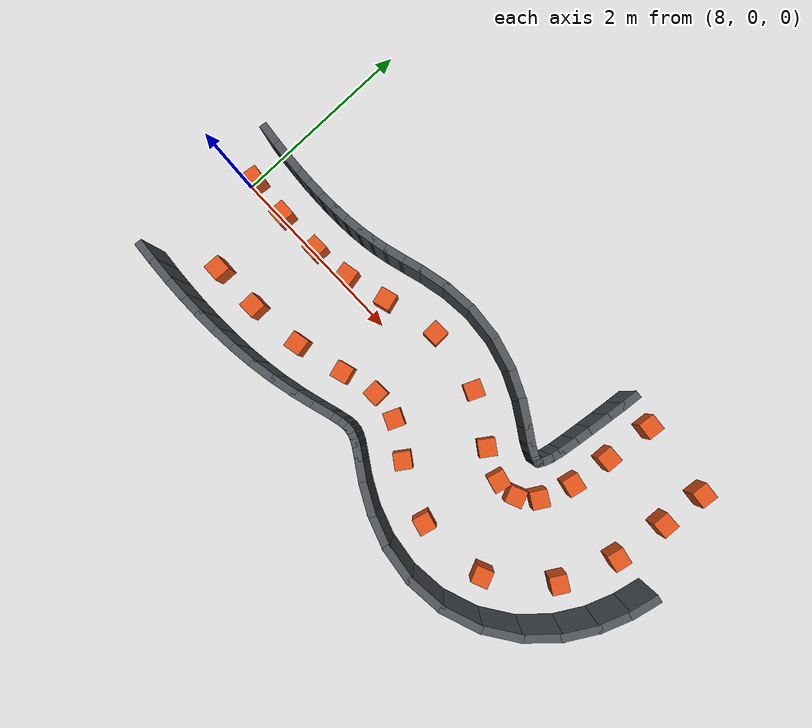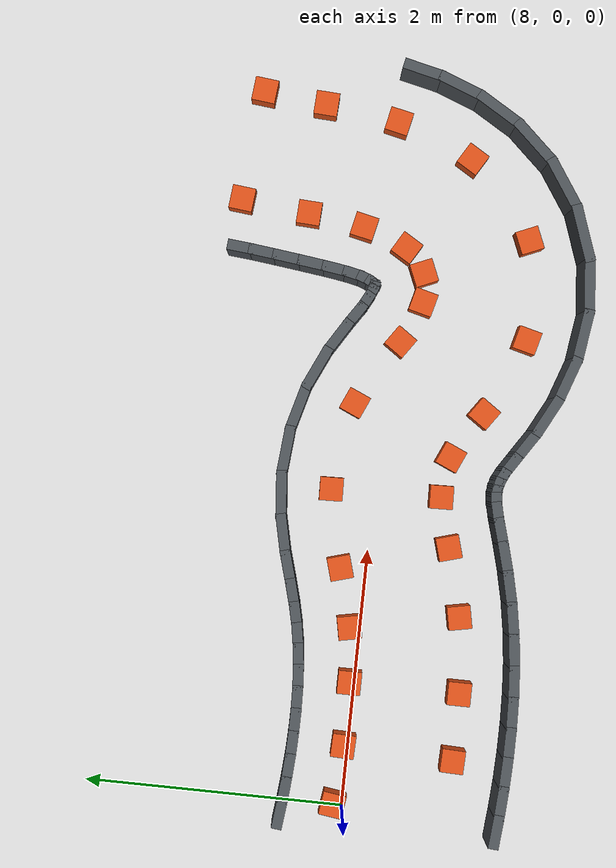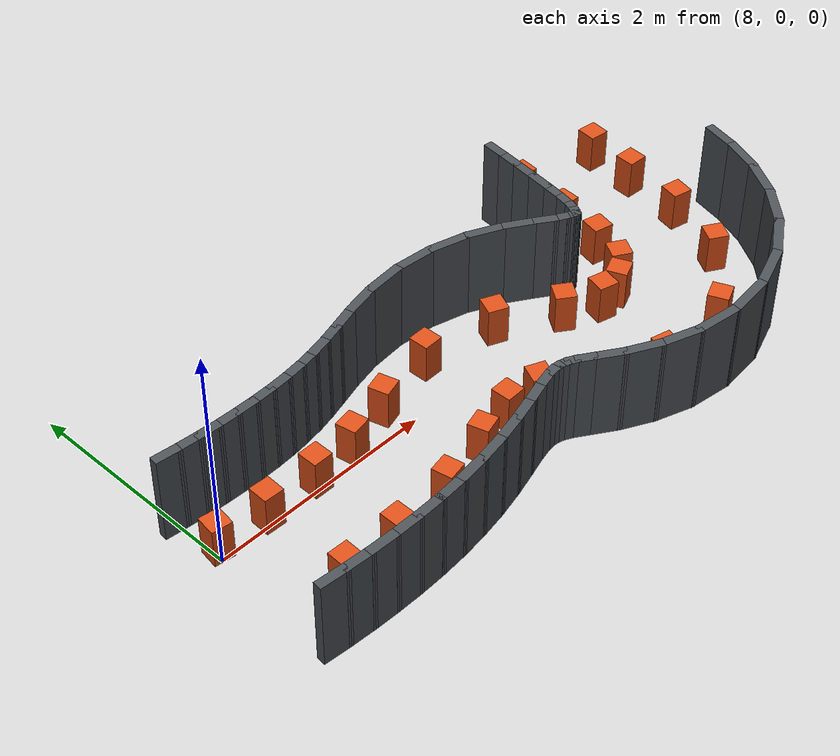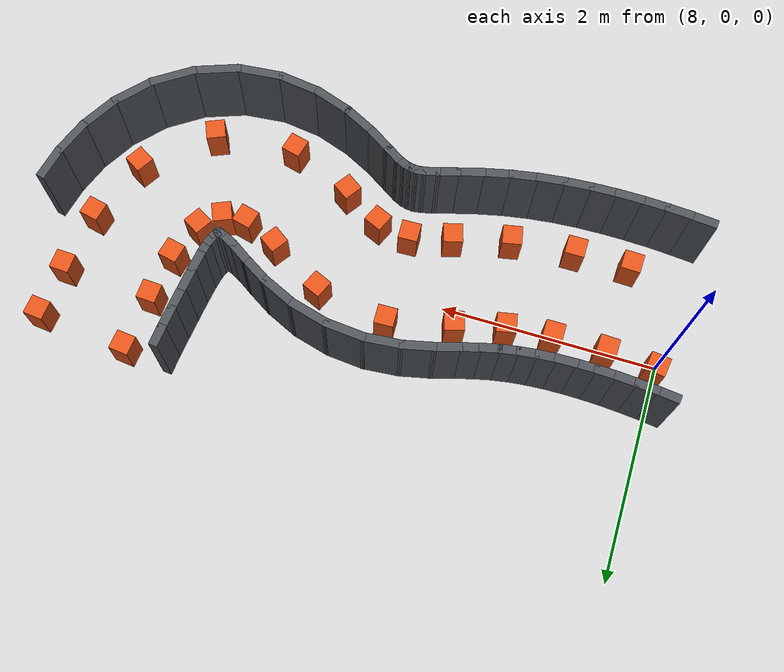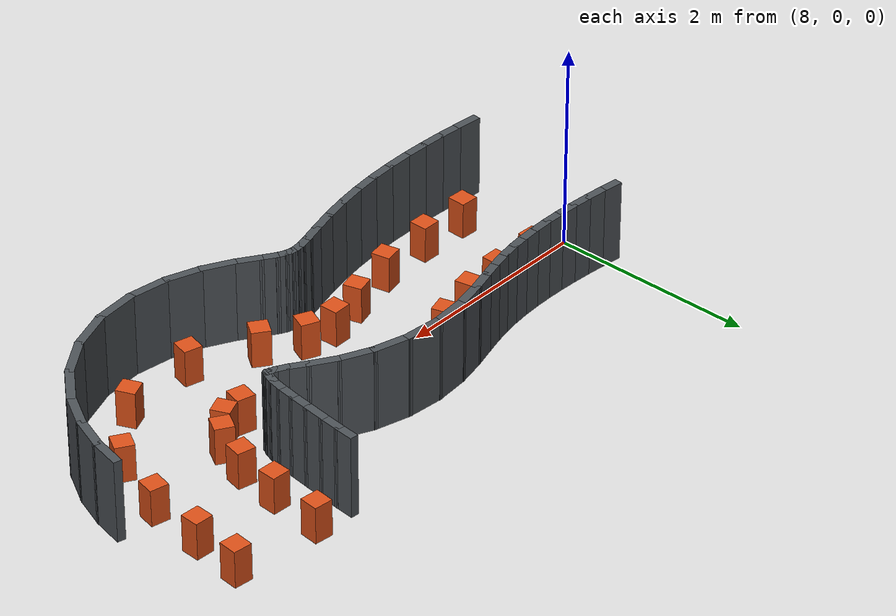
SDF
<sdf version="1.10">
 <world name="kookmin_xycar_track">
  <model name="slam_map">
   <static>true</static>
   <link name="route_wall_0131">
    <pose>7.966648 0.474018 0.400000 0 0 -0.115476760</pose>
    <collision name="collision">
     <geometry><box><size>0.223891 0.080000 0.800000</size></box></geometry>
    </collision>
    <visual name="visual">
     <geometry><box><size>0.223891 0.080000 0.800000</size></box></geometry>
     <material>
      <ambient>0.3000 0.3200 0.3400 1.0000</ambient>
      <diffuse>0.3000 0.3200 0.3400 1.0000</diffuse>
     </material>
    </visual>
   </link>
   <link name="route_wall_0132">
    <pose>8.147479 0.455454 0.400000 0 0 -0.088816953</pose>
    <collision name="collision">
     <geometry><box><size>0.219703 0.080000 0.800000</size></box></geometry>
    </collision>
    <visual name="visual">
     <geometry><box><size>0.219703 0.080000 0.800000</size></box></geometry>
     <material>
      <ambient>0.3000 0.3200 0.3400 1.0000</ambient>
      <diffuse>0.3000 0.3200 0.3400 1.0000</diffuse>
     </material>
    </visual>
   </link>
   <link name="route_wall_0133">
    <pose>8.325594 0.441581 0.400000 0 0 -0.066514917</pose>
    <collision name="collision">
     <geometry><box><size>0.217628 0.080000 0.800000</size></box></geometry>
    </collision>
    <visual name="visual">
     <geometry><box><size>0.217628 0.080000 0.800000</size></box></geometry>
     <material>
      <ambient>0.3000 0.3200 0.3400 1.0000</ambient>
      <diffuse>0.3000 0.3200 0.3400 1.0000</diffuse>
     </material>
    </visual>
   </link>
   <link name="route_wall_0134">
    <pose>8.501667 0.432632 0.400000 0 0 -0.034815207</pose>
    <collision name="collision">
     <geometry><box><size>0.215016 0.080000 0.800000</size></box></geometry>
    </collision>
    <visual name="visual">
     <geometry><box><size>0.215016 0.080000 0.800000</size></box></geometry>
     <material>
      <ambient>0.3000 0.3200 0.3400 1.0000</ambient>
      <diffuse>0.3000 0.3200 0.3400 1.0000</diffuse>
     </material>
    </visual>
   </link>
   <link name="route_wall_0135">
    <pose>8.675839 0.429061 0.400000 0 0 -0.006060002</pose>
    <collision name="collision">
     <geometry><box><size>0.213438 0.080000 0.800000</size></box></geometry>
    </collision>
    <visual name="visual">
     <geometry><box><size>0.213438 0.080000 0.800000</size></box></geometry>
     <material>
      <ambient>0.3000 0.3200 0.3400 1.0000</ambient>
      <diffuse>0.3000 0.3200 0.3400 1.0000</diffuse>
     </material>
    </visual>
   </link>
   <link name="route_wall_0136">
    <pose>8.847007 0.431000 0.400000 0 0 0.029178866</pose>
    <collision name="collision">
     <geometry><box><size>0.208973 0.080000 0.800000</size></box></geometry>
    </collision>
    <visual name="visual">
     <geometry><box><size>0.208973 0.080000 0.800000</size></box></geometry>
     <material>
      <ambient>0.3000 0.3200 0.3400 1.0000</ambient>
      <diffuse>0.3000 0.3200 0.3400 1.0000</diffuse>
     </material>
    </visual>
   </link>
   <link name="route_wall_0137">
    <pose>9.012983 0.439090 0.400000 0 0 0.068886231</pose>
    <collision name="collision">
     <geometry><box><size>0.203439 0.080000 0.800000</size></box></geometry>
    </collision>
    <visual name="visual">
     <geometry><box><size>0.203439 0.080000 0.800000</size></box></geometry>
     <material>
      <ambient>0.3000 0.3200 0.3400 1.0000</ambient>
      <diffuse>0.3000 0.3200 0.3400 1.0000</diffuse>
     </material>
    </visual>
   </link>
   <link name="route_wall_0138">
    <pose>9.173422 0.454073 0.400000 0 0 0.118038297</pose>
    <collision name="collision">
     <geometry><box><size>0.198934 0.080000 0.800000</size></box></geometry>
    </collision>
    <visual name="visual">
     <geometry><box><size>0.198934 0.080000 0.800000</size></box></geometry>
     <material>
      <ambient>0.3000 0.3200 0.3400 1.0000</ambient>
      <diffuse>0.3000 0.3200 0.3400 1.0000</diffuse>
     </material>
    </visual>
   </link>
   <link name="route_wall_0139">
    <pose>9.329199 0.476532 0.400000 0 0 0.168815756</pose>
    <collision name="collision">
     <geometry><box><size>0.195942 0.080000 0.800000</size></box></geometry>
    </collision>
    <visual name="visual">
     <geometry><box><size>0.195942 0.080000 0.800000</size></box></geometry>
     <material>
      <ambient>0.3000 0.3200 0.3400 1.0000</ambient>
      <diffuse>0.3000 0.3200 0.3400 1.0000</diffuse>
     </material>
    </visual>
   </link>
   <link name="route_wall_0140">
    <pose>9.483559 0.507461 0.400000 0 0 0.226128480</pose>
    <collision name="collision">
     <geometry><box><size>0.199043 0.080000 0.800000</size></box></geometry>
    </collision>
    <visual name="visual">
     <geometry><box><size>0.199043 0.080000 0.800000</size></box></geometry>
     <material>
      <ambient>0.3000 0.3200 0.3400 1.0000</ambient>
      <diffuse>0.3000 0.3200 0.3400 1.0000</diffuse>
     </material>
    </visual>
   </link>
   <link name="route_wall_0141">
    <pose>9.645888 0.548739 0.400000 0 0 0.269673224</pose>
    <collision name="collision">
     <geometry><box><size>0.216026 0.080000 0.800000</size></box></geometry>
    </collision>
    <visual name="visual">
     <geometry><box><size>0.216026 0.080000 0.800000</size></box></geometry>
     <material>
      <ambient>0.3000 0.3200 0.3400 1.0000</ambient>
      <diffuse>0.3000 0.3200 0.3400 1.0000</diffuse>
     </material>
    </visual>
   </link>
   <link name="route_wall_0142">
    <pose>9.835093 0.602401 0.400000 0 0 0.281784148</pose>
    <collision name="collision">
     <geometry><box><size>0.257315 0.080000 0.800000</size></box></geometry>
    </collision>
    <visual name="visual">
     <geometry><box><size>0.257315 0.080000 0.800000</size></box></geometry>
     <material>
      <ambient>0.3000 0.3200 0.3400 1.0000</ambient>
      <diffuse>0.3000 0.3200 0.3400 1.0000</diffuse>
     </material>
    </visual>
   </link>
   <link name="route_wall_0143">
    <pose>10.075233 0.662973 0.400000 0 0 0.219982755</pose>
    <collision name="collision">
     <geometry><box><size>0.318241 0.080000 0.800000</size></box></geometry>
    </collision>
    <visual name="visual">
     <geometry><box><size>0.318241 0.080000 0.800000</size></box></geometry>
     <material>
      <ambient>0.3000 0.3200 0.3400 1.0000</ambient>
      <diffuse>0.3000 0.3200 0.3400 1.0000</diffuse>
     </material>
    </visual>
   </link>
   <link name="route_wall_0144">
    <pose>10.374352 0.707405 0.400000 0 0 0.085946615</pose>
    <collision name="collision">
     <geometry><box><size>0.367912 0.080000 0.800000</size></box></geometry>
    </collision>
    <visual name="visual">
     <geometry><box><size>0.367912 0.080000 0.800000</size></box></geometry>
     <material>
      <ambient>0.3000 0.3200 0.3400 1.0000</ambient>
      <diffuse>0.3000 0.3200 0.3400 1.0000</diffuse>
     </material>
    </visual>
   </link>
   <link name="route_wall_0145">
    <pose>10.709081 0.706148 0.400000 0 0 -0.089224933</pose>
    <collision name="collision">
     <geometry><box><size>0.384126 0.080000 0.800000</size></box></geometry>
    </collision>
    <visual name="visual">
     <geometry><box><size>0.384126 0.080000 0.800000</size></box></geometry>
     <material>
      <ambient>0.3000 0.3200 0.3400 1.0000</ambient>
      <diffuse>0.3000 0.3200 0.3400 1.0000</diffuse>
     </material>
    </visual>
   </link>
   <link name="route_wall_0146">
    <pose>11.044491 0.646432 0.400000 0 0 -0.264249761</pose>
    <collision name="collision">
     <geometry><box><size>0.379859 0.080000 0.800000</size></box></geometry>
    </collision>
    <visual name="visual">
     <geometry><box><size>0.379859 0.080000 0.800000</size></box></geometry>
     <material>
      <ambient>0.3000 0.3200 0.3400 1.0000</ambient>
      <diffuse>0.3000 0.3200 0.3400 1.0000</diffuse>
     </material>
    </visual>
   </link>
   <link name="route_wall_0147">
    <pose>11.354007 0.535261 0.400000 0 0 -0.430377103</pose>
    <collision name="collision">
     <geometry><box><size>0.360164 0.080000 0.800000</size></box></geometry>
    </collision>
    <visual name="visual">
     <geometry><box><size>0.360164 0.080000 0.800000</size></box></geometry>
     <material>
      <ambient>0.3000 0.3200 0.3400 1.0000</ambient>
      <diffuse>0.3000 0.3200 0.3400 1.0000</diffuse>
     </material>
    </visual>
   </link>
   <link name="route_wall_0148">
    <pose>11.609471 0.400313 0.400000 0 0 -0.554811284</pose>
    <collision name="collision">
     <geometry><box><size>0.298777 0.080000 0.800000</size></box></geometry>
    </collision>
    <visual name="visual">
     <geometry><box><size>0.298777 0.080000 0.800000</size></box></geometry>
     <material>
      <ambient>0.3000 0.3200 0.3400 1.0000</ambient>
      <diffuse>0.3000 0.3200 0.3400 1.0000</diffuse>
     </material>
    </visual>
   </link>
   <link name="route_wall_0149">
    <pose>11.789101 0.285999 0.400000 0 0 -0.585222081</pose>
    <collision name="collision">
     <geometry><box><size>0.207108 0.080000 0.800000</size></box></geometry>
    </collision>
    <visual name="visual">
     <geometry><box><size>0.207108 0.080000 0.800000</size></box></geometry>
     <material>
      <ambient>0.3000 0.3200 0.3400 1.0000</ambient>
      <diffuse>0.3000 0.3200 0.3400 1.0000</diffuse>
     </material>
    </visual>
   </link>
   <link name="route_wall_0150">
    <pose>11.902926 0.216132 0.400000 0 0 -0.492660902</pose>
    <collision name="collision">
     <geometry><box><size>0.140275 0.080000 0.800000</size></box></geometry>
    </collision>
    <visual name="visual">
     <geometry><box><size>0.140275 0.080000 0.800000</size></box></geometry>
     <material>
      <ambient>0.3000 0.3200 0.3400 1.0000</ambient>
      <diffuse>0.3000 0.3200 0.3400 1.0000</diffuse>
     </material>
    </visual>
   </link>
   <link name="route_wall_0151">
    <pose>11.975694 0.181530 0.400000 0 0 -0.363830970</pose>
    <collision name="collision">
     <geometry><box><size>0.101193 0.080000 0.800000</size></box></geometry>
    </collision>
    <visual name="visual">
     <geometry><box><size>0.101193 0.080000 0.800000</size></box></geometry>
     <material>
      <ambient>0.3000 0.3200 0.3400 1.0000</ambient>
      <diffuse>0.3000 0.3200 0.3400 1.0000</diffuse>
     </material>
    </visual>
   </link>
   <link name="route_wall_0152">
    <pose>12.017201 0.168010 0.400000 0 0 -0.201098712</pose>
    <collision name="collision">
     <geometry><box><size>0.066357 0.080000 0.800000</size></box></geometry>
    </collision>
    <visual name="visual">
     <geometry><box><size>0.066357 0.080000 0.800000</size></box></geometry>
     <material>
      <ambient>0.3000 0.3200 0.3400 1.0000</ambient>
      <diffuse>0.3000 0.3200 0.3400 1.0000</diffuse>
     </material>
    </visual>
   </link>
   <link name="route_wall_0153">
    <pose>12.030471 0.164738 0.400000 0 0 -1.061222400</pose>
    <collision name="collision">
     <geometry><box><size>0.041464 0.080000 0.800000</size></box></geometry>
    </collision>
    <visual name="visual">
     <geometry><box><size>0.041464 0.080000 0.800000</size></box></geometry>
     <material>
      <ambient>0.3000 0.3200 0.3400 1.0000</ambient>
      <diffuse>0.3000 0.3200 0.3400 1.0000</diffuse>
     </material>
    </visual>
   </link>
   <link name="route_wall_0154">
    <pose>12.027094 0.162926 0.400000 0 0 -2.837242299</pose>
    <collision name="collision">
     <geometry><box><size>0.047828 0.080000 0.800000</size></box></geometry>
    </collision>
    <visual name="visual">
     <geometry><box><size>0.047828 0.080000 0.800000</size></box></geometry>
     <material>
      <ambient>0.3000 0.3200 0.3400 1.0000</ambient>
      <diffuse>0.3000 0.3200 0.3400 1.0000</diffuse>
     </material>
    </visual>
   </link>
   <link name="route_wall_0155">
    <pose>12.023251 0.162083 0.400000 0 0 1.888973631</pose>
    <collision name="collision">
     <geometry><box><size>0.040693 0.080000 0.800000</size></box></geometry>
    </collision>
    <visual name="visual">
     <geometry><box><size>0.040693 0.080000 0.800000</size></box></geometry>
     <material>
      <ambient>0.3000 0.3200 0.3400 1.0000</ambient>
      <diffuse>0.3000 0.3200 0.3400 1.0000</diffuse>
     </material>
    </visual>
   </link>
   <link name="route_wall_0156">
    <pose>12.028943 0.169905 0.400000 0 0 0.912114388</pose>
    <collision name="collision">
     <geometry><box><size>0.058951 0.080000 0.800000</size></box></geometry>
    </collision>
    <visual name="visual">
     <geometry><box><size>0.058951 0.080000 0.800000</size></box></geometry>
     <material>
      <ambient>0.3000 0.3200 0.3400 1.0000</ambient>
      <diffuse>0.3000 0.3200 0.3400 1.0000</diffuse>
     </material>
    </visual>
   </link>
   <link name="route_wall_0157">
    <pose>12.045730 0.197348 0.400000 0 0 1.067370011</pose>
    <collision name="collision">
     <geometry><box><size>0.085550 0.080000 0.800000</size></box></geometry>
    </collision>
    <visual name="visual">
     <geometry><box><size>0.085550 0.080000 0.800000</size></box></geometry>
     <material>
      <ambient>0.3000 0.3200 0.3400 1.0000</ambient>
      <diffuse>0.3000 0.3200 0.3400 1.0000</diffuse>
     </material>
    </visual>
   </link>
   <link name="route_wall_0158">
    <pose>12.068864 0.251259 0.400000 0 0 1.227312930</pose>
    <collision name="collision">
     <geometry><box><size>0.112137 0.080000 0.800000</size></box></geometry>
    </collision>
    <visual name="visual">
     <geometry><box><size>0.112137 0.080000 0.800000</size></box></geometry>
     <material>
      <ambient>0.3000 0.3200 0.3400 1.0000</ambient>
      <diffuse>0.3000 0.3200 0.3400 1.0000</diffuse>
     </material>
    </visual>
   </link>
   <link name="route_wall_0159">
    <pose>12.092694 0.341290 0.400000 0 0 1.365360271</pose>
    <collision name="collision">
     <geometry><box><size>0.154547 0.080000 0.800000</size></box></geometry>
    </collision>
    <visual name="visual">
     <geometry><box><size>0.154547 0.080000 0.800000</size></box></geometry>
     <material>
      <ambient>0.3000 0.3200 0.3400 1.0000</ambient>
      <diffuse>0.3000 0.3200 0.3400 1.0000</diffuse>
     </material>
    </visual>
   </link>
   <link name="route_wall_0160">
    <pose>12.116304 0.478053 0.400000 0 0 1.424060345</pose>
    <collision name="collision">
     <geometry><box><size>0.203143 0.080000 0.800000</size></box></geometry>
    </collision>
    <visual name="visual">
     <geometry><box><size>0.203143 0.080000 0.800000</size></box></geometry>
     <material>
      <ambient>0.3000 0.3200 0.3400 1.0000</ambient>
      <diffuse>0.3000 0.3200 0.3400 1.0000</diffuse>
     </material>
    </visual>
   </link>
   <link name="route_wall_0161">
    <pose>12.140359 0.652411 0.400000 0 0 1.442022619</pose>
    <collision name="collision">
     <geometry><box><size>0.228890 0.080000 0.800000</size></box></geometry>
    </collision>
    <visual name="visual">
     <geometry><box><size>0.228890 0.080000 0.800000</size></box></geometry>
     <material>
      <ambient>0.3000 0.3200 0.3400 1.0000</ambient>
      <diffuse>0.3000 0.3200 0.3400 1.0000</diffuse>
     </material>
    </visual>
   </link>
   <link name="route_wall_0162">
    <pose>12.164412 0.842508 0.400000 0 0 1.447760704</pose>
    <collision name="collision">
     <geometry><box><size>0.234336 0.080000 0.800000</size></box></geometry>
    </collision>
    <visual name="visual">
     <geometry><box><size>0.234336 0.080000 0.800000</size></box></geometry>
     <material>
      <ambient>0.3000 0.3200 0.3400 1.0000</ambient>
      <diffuse>0.3000 0.3200 0.3400 1.0000</diffuse>
     </material>
    </visual>
   </link>
   <link name="route_wall_0163">
    <pose>12.187168 1.031731 0.400000 0 0 1.454597416</pose>
    <collision name="collision">
     <geometry><box><size>0.226840 0.080000 0.800000</size></box></geometry>
    </collision>
    <visual name="visual">
     <geometry><box><size>0.226840 0.080000 0.800000</size></box></geometry>
     <material>
      <ambient>0.3000 0.3200 0.3400 1.0000</ambient>
      <diffuse>0.3000 0.3200 0.3400 1.0000</diffuse>
     </material>
    </visual>
   </link>
   <link name="route_wall_0164">
    <pose>12.205641 1.205674 0.400000 0 0 1.476904332</pose>
    <collision name="collision">
     <geometry><box><size>0.203023 0.080000 0.800000</size></box></geometry>
    </collision>
    <visual name="visual">
     <geometry><box><size>0.203023 0.080000 0.800000</size></box></geometry>
     <material>
      <ambient>0.3000 0.3200 0.3400 1.0000</ambient>
      <diffuse>0.3000 0.3200 0.3400 1.0000</diffuse>
     </material>
    </visual>
   </link>
   <link name="route_wall_0346">
    <pose>8.001109 -1.169846 0.400000 0 0 -0.088998348</pose>
    <collision name="collision">
     <geometry><box><size>0.259632 0.080000 0.800000</size></box></geometry>
    </collision>
    <visual name="visual">
     <geometry><box><size>0.259632 0.080000 0.800000</size></box></geometry>
     <material>
      <ambient>0.3000 0.3200 0.3400 1.0000</ambient>
      <diffuse>0.3000 0.3200 0.3400 1.0000</diffuse>
     </material>
    </visual>
   </link>
   <link name="route_wall_0347">
    <pose>8.221103 -1.186921 0.400000 0 0 -0.066030008</pose>
    <collision name="collision">
     <geometry><box><size>0.261708 0.080000 0.800000</size></box></geometry>
    </collision>
    <visual name="visual">
     <geometry><box><size>0.261708 0.080000 0.800000</size></box></geometry>
     <material>
      <ambient>0.3000 0.3200 0.3400 1.0000</ambient>
      <diffuse>0.3000 0.3200 0.3400 1.0000</diffuse>
     </material>
    </visual>
   </link>
   <link name="route_wall_0348">
    <pose>8.443805 -1.198156 0.400000 0 0 -0.034958256</pose>
    <collision name="collision">
     <geometry><box><size>0.264315 0.080000 0.800000</size></box></geometry>
    </collision>
    <visual name="visual">
     <geometry><box><size>0.264315 0.080000 0.800000</size></box></geometry>
     <material>
      <ambient>0.3000 0.3200 0.3400 1.0000</ambient>
      <diffuse>0.3000 0.3200 0.3400 1.0000</diffuse>
     </material>
    </visual>
   </link>
   <link name="route_wall_0349">
    <pose>8.668840 -1.202714 0.400000 0 0 -0.005648764</pose>
    <collision name="collision">
     <geometry><box><size>0.265895 0.080000 0.800000</size></box></geometry>
    </collision>
    <visual name="visual">
     <geometry><box><size>0.265895 0.080000 0.800000</size></box></geometry>
     <material>
      <ambient>0.3000 0.3200 0.3400 1.0000</ambient>
      <diffuse>0.3000 0.3200 0.3400 1.0000</diffuse>
     </material>
    </visual>
   </link>
   <link name="route_wall_0350">
    <pose>8.896903 -1.199949 0.400000 0 0 0.029553245</pose>
    <collision name="collision">
     <geometry><box><size>0.270336 0.080000 0.800000</size></box></geometry>
    </collision>
    <visual name="visual">
     <geometry><box><size>0.270336 0.080000 0.800000</size></box></geometry>
     <material>
      <ambient>0.3000 0.3200 0.3400 1.0000</ambient>
      <diffuse>0.3000 0.3200 0.3400 1.0000</diffuse>
     </material>
    </visual>
   </link>
   <link name="route_wall_0351">
    <pose>9.129674 -1.188330 0.400000 0 0 0.069713729</pose>
    <collision name="collision">
     <geometry><box><size>0.275879 0.080000 0.800000</size></box></geometry>
    </collision>
    <visual name="visual">
     <geometry><box><size>0.275879 0.080000 0.800000</size></box></geometry>
     <material>
      <ambient>0.3000 0.3200 0.3400 1.0000</ambient>
      <diffuse>0.3000 0.3200 0.3400 1.0000</diffuse>
     </material>
    </visual>
   </link>
   <link name="route_wall_0352">
    <pose>9.366669 -1.165934 0.400000 0 0 0.118271548</pose>
    <collision name="collision">
     <geometry><box><size>0.280364 0.080000 0.800000</size></box></geometry>
    </collision>
    <visual name="visual">
     <geometry><box><size>0.280364 0.080000 0.800000</size></box></geometry>
     <material>
      <ambient>0.3000 0.3200 0.3400 1.0000</ambient>
      <diffuse>0.3000 0.3200 0.3400 1.0000</diffuse>
     </material>
    </visual>
   </link>
   <link name="route_wall_0353">
    <pose>9.605948 -1.131238 0.400000 0 0 0.169406843</pose>
    <collision name="collision">
     <geometry><box><size>0.283355 0.080000 0.800000</size></box></geometry>
    </collision>
    <visual name="visual">
     <geometry><box><size>0.283355 0.080000 0.800000</size></box></geometry>
     <material>
      <ambient>0.3000 0.3200 0.3400 1.0000</ambient>
      <diffuse>0.3000 0.3200 0.3400 1.0000</diffuse>
     </material>
    </visual>
   </link>
   <link name="route_wall_0354">
    <pose>9.842987 -1.083949 0.400000 0 0 0.224776285</pose>
    <collision name="collision">
     <geometry><box><size>0.280252 0.080000 0.800000</size></box></geometry>
    </collision>
    <visual name="visual">
     <geometry><box><size>0.280252 0.080000 0.800000</size></box></geometry>
     <material>
      <ambient>0.3000 0.3200 0.3400 1.0000</ambient>
      <diffuse>0.3000 0.3200 0.3400 1.0000</diffuse>
     </material>
    </visual>
   </link>
   <link name="route_wall_0355">
    <pose>10.067757 -1.027615 0.400000 0 0 0.267941832</pose>
    <collision name="collision">
     <geometry><box><size>0.263300 0.080000 0.800000</size></box></geometry>
    </collision>
    <visual name="visual">
     <geometry><box><size>0.263300 0.080000 0.800000</size></box></geometry>
     <material>
      <ambient>0.3000 0.3200 0.3400 1.0000</ambient>
      <diffuse>0.3000 0.3200 0.3400 1.0000</diffuse>
     </material>
    </visual>
   </link>
   <link name="route_wall_0356">
    <pose>10.262764 -0.972467 0.400000 0 0 0.285006543</pose>
    <collision name="collision">
     <geometry><box><size>0.222025 0.080000 0.800000</size></box></geometry>
    </collision>
    <visual name="visual">
     <geometry><box><size>0.222025 0.080000 0.800000</size></box></geometry>
     <material>
      <ambient>0.3000 0.3200 0.3400 1.0000</ambient>
      <diffuse>0.3000 0.3200 0.3400 1.0000</diffuse>
     </material>
    </visual>
   </link>
   <link name="route_wall_0357">
    <pose>10.408882 -0.932619 0.400000 0 0 0.237989549</pose>
    <collision name="collision">
     <geometry><box><size>0.160964 0.080000 0.800000</size></box></geometry>
    </collision>
    <visual name="visual">
     <geometry><box><size>0.160964 0.080000 0.800000</size></box></geometry>
     <material>
      <ambient>0.3000 0.3200 0.3400 1.0000</ambient>
      <diffuse>0.3000 0.3200 0.3400 1.0000</diffuse>
     </material>
    </visual>
   </link>
   <link name="route_wall_0358">
    <pose>10.502927 -0.914440 0.400000 0 0 0.110696316</pose>
    <collision name="collision">
     <geometry><box><size>0.110970 0.080000 0.800000</size></box></geometry>
    </collision>
    <visual name="visual">
     <geometry><box><size>0.110970 0.080000 0.800000</size></box></geometry>
     <material>
      <ambient>0.3000 0.3200 0.3400 1.0000</ambient>
      <diffuse>0.3000 0.3200 0.3400 1.0000</diffuse>
     </material>
    </visual>
   </link>
   <link name="route_wall_0359">
    <pose>10.565421 -0.913063 0.400000 0 0 -0.093110009</pose>
    <collision name="collision">
     <geometry><box><size>0.094689 0.080000 0.800000</size></box></geometry>
    </collision>
    <visual name="visual">
     <geometry><box><size>0.094689 0.080000 0.800000</size></box></geometry>
     <material>
      <ambient>0.3000 0.3200 0.3400 1.0000</ambient>
      <diffuse>0.3000 0.3200 0.3400 1.0000</diffuse>
     </material>
    </visual>
   </link>
   <link name="route_wall_0360">
    <pose>10.621069 -0.923411 0.400000 0 0 -0.268044329</pose>
    <collision name="collision">
     <geometry><box><size>0.098949 0.080000 0.800000</size></box></geometry>
    </collision>
    <visual name="visual">
     <geometry><box><size>0.098949 0.080000 0.800000</size></box></geometry>
     <material>
      <ambient>0.3000 0.3200 0.3400 1.0000</ambient>
      <diffuse>0.3000 0.3200 0.3400 1.0000</diffuse>
     </material>
    </visual>
   </link>
   <link name="route_wall_0361">
    <pose>10.684899 -0.948362 0.400000 0 0 -0.450929177</pose>
    <collision name="collision">
     <geometry><box><size>0.118681 0.080000 0.800000</size></box></geometry>
    </collision>
    <visual name="visual">
     <geometry><box><size>0.118681 0.080000 0.800000</size></box></geometry>
     <material>
      <ambient>0.3000 0.3200 0.3400 1.0000</ambient>
      <diffuse>0.3000 0.3200 0.3400 1.0000</diffuse>
     </material>
    </visual>
   </link>
   <link name="route_wall_0362">
    <pose>10.779365 -1.003556 0.400000 0 0 -0.572338039</pose>
    <collision name="collision">
     <geometry><box><size>0.180508 0.080000 0.800000</size></box></geometry>
    </collision>
    <visual name="visual">
     <geometry><box><size>0.180508 0.080000 0.800000</size></box></geometry>
     <material>
      <ambient>0.3000 0.3200 0.3400 1.0000</ambient>
      <diffuse>0.3000 0.3200 0.3400 1.0000</diffuse>
     </material>
    </visual>
   </link>
   <link name="route_wall_0363">
    <pose>10.935826 -1.104787 0.400000 0 0 -0.575430375</pose>
    <collision name="collision">
     <geometry><box><size>0.272200 0.080000 0.800000</size></box></geometry>
    </collision>
    <visual name="visual">
     <geometry><box><size>0.272200 0.080000 0.800000</size></box></geometry>
     <material>
      <ambient>0.3000 0.3200 0.3400 1.0000</ambient>
      <diffuse>0.3000 0.3200 0.3400 1.0000</diffuse>
     </material>
    </visual>
   </link>
   <link name="route_wall_0364">
    <pose>11.165920 -1.236588 0.400000 0 0 -0.477268231</pose>
    <collision name="collision">
     <geometry><box><size>0.338767 0.080000 0.800000</size></box></geometry>
    </collision>
    <visual name="visual">
     <geometry><box><size>0.338767 0.080000 0.800000</size></box></geometry>
     <material>
      <ambient>0.3000 0.3200 0.3400 1.0000</ambient>
      <diffuse>0.3000 0.3200 0.3400 1.0000</diffuse>
     </material>
    </visual>
   </link>
   <link name="route_wall_0365">
    <pose>11.458267 -1.360086 0.400000 0 0 -0.331073334</pose>
    <collision name="collision">
     <geometry><box><size>0.377649 0.080000 0.800000</size></box></geometry>
    </collision>
    <visual name="visual">
     <geometry><box><size>0.377649 0.080000 0.800000</size></box></geometry>
     <material>
      <ambient>0.3000 0.3200 0.3400 1.0000</ambient>
      <diffuse>0.3000 0.3200 0.3400 1.0000</diffuse>
     </material>
    </visual>
   </link>
   <link name="route_wall_0366">
    <pose>11.802272 -1.440503 0.400000 0 0 -0.137662886</pose>
    <collision name="collision">
     <geometry><box><size>0.412220 0.080000 0.800000</size></box></geometry>
    </collision>
    <visual name="visual">
     <geometry><box><size>0.412220 0.080000 0.800000</size></box></geometry>
     <material>
      <ambient>0.3000 0.3200 0.3400 1.0000</ambient>
      <diffuse>0.3000 0.3200 0.3400 1.0000</diffuse>
     </material>
    </visual>
   </link>
   <link name="route_wall_0367">
    <pose>12.184658 -1.447780 0.400000 0 0 0.091959901</pose>
    <collision name="collision">
     <geometry><box><size>0.437754 0.080000 0.800000</size></box></geometry>
    </collision>
    <visual name="visual">
     <geometry><box><size>0.437754 0.080000 0.800000</size></box></geometry>
     <material>
      <ambient>0.3000 0.3200 0.3400 1.0000</ambient>
      <diffuse>0.3000 0.3200 0.3400 1.0000</diffuse>
     </material>
    </visual>
   </link>
   <link name="route_wall_0368">
    <pose>12.573764 -1.360800 0.400000 0 0 0.345241234</pose>
    <collision name="collision">
     <geometry><box><size>0.446101 0.080000 0.800000</size></box></geometry>
    </collision>
    <visual name="visual">
     <geometry><box><size>0.446101 0.080000 0.800000</size></box></geometry>
     <material>
      <ambient>0.3000 0.3200 0.3400 1.0000</ambient>
      <diffuse>0.3000 0.3200 0.3400 1.0000</diffuse>
     </material>
    </visual>
   </link>
   <link name="route_wall_0369">
    <pose>12.929629 -1.180421 0.400000 0 0 0.595520645</pose>
    <collision name="collision">
     <geometry><box><size>0.438125 0.080000 0.800000</size></box></geometry>
    </collision>
    <visual name="visual">
     <geometry><box><size>0.438125 0.080000 0.800000</size></box></geometry>
     <material>
      <ambient>0.3000 0.3200 0.3400 1.0000</ambient>
      <diffuse>0.3000 0.3200 0.3400 1.0000</diffuse>
     </material>
    </visual>
   </link>
   <link name="route_wall_0370">
    <pose>13.222354 -0.928582 0.400000 0 0 0.831046848</pose>
    <collision name="collision">
     <geometry><box><size>0.419556 0.080000 0.800000</size></box></geometry>
    </collision>
    <visual name="visual">
     <geometry><box><size>0.419556 0.080000 0.800000</size></box></geometry>
     <material>
      <ambient>0.3000 0.3200 0.3400 1.0000</ambient>
      <diffuse>0.3000 0.3200 0.3400 1.0000</diffuse>
     </material>
    </visual>
   </link>
   <link name="route_wall_0371">
    <pose>13.440237 -0.636375 0.400000 0 0 1.036516024</pose>
    <collision name="collision">
     <geometry><box><size>0.393295 0.080000 0.800000</size></box></geometry>
    </collision>
    <visual name="visual">
     <geometry><box><size>0.393295 0.080000 0.800000</size></box></geometry>
     <material>
      <ambient>0.3000 0.3200 0.3400 1.0000</ambient>
      <diffuse>0.3000 0.3200 0.3400 1.0000</diffuse>
     </material>
    </visual>
   </link>
   <link name="route_wall_0372">
    <pose>13.587931 -0.331540 0.400000 0 0 1.209504689</pose>
    <collision name="collision">
     <geometry><box><size>0.366703 0.080000 0.800000</size></box></geometry>
    </collision>
    <visual name="visual">
     <geometry><box><size>0.366703 0.080000 0.800000</size></box></geometry>
     <material>
      <ambient>0.3000 0.3200 0.3400 1.0000</ambient>
      <diffuse>0.3000 0.3200 0.3400 1.0000</diffuse>
     </material>
    </visual>
   </link>
   <link name="route_wall_0373">
    <pose>13.677255 -0.039967 0.400000 0 0 1.347023876</pose>
    <collision name="collision">
     <geometry><box><size>0.324632 0.080000 0.800000</size></box></geometry>
    </collision>
    <visual name="visual">
     <geometry><box><size>0.324632 0.080000 0.800000</size></box></geometry>
     <material>
      <ambient>0.3000 0.3200 0.3400 1.0000</ambient>
      <diffuse>0.3000 0.3200 0.3400 1.0000</diffuse>
     </material>
    </visual>
   </link>
   <link name="cone_rule_left_04">
    <pose>8.030717 0.073629 0.180000 0 0 -0.142873870</pose>
    <collision name="collision">
     <geometry><box><size>0.180000 0.180000 0.360000</size></box></geometry>
    </collision>
    <visual name="visual">
     <geometry><box><size>0.180000 0.180000 0.360000</size></box></geometry>
     <material>
      <ambient>0.8627 0.3137 0.0941 1.0000</ambient>
      <diffuse>0.8627 0.3137 0.0941 1.0000</diffuse>
     </material>
    </visual>
   </link>
   <link name="cone_rule_left_05">
    <pose>8.489573 0.037775 0.180000 0 0 -0.036173842</pose>
    <collision name="collision">
     <geometry><box><size>0.180000 0.180000 0.360000</size></box></geometry>
    </collision>
    <visual name="visual">
     <geometry><box><size>0.180000 0.180000 0.360000</size></box></geometry>
     <material>
      <ambient>0.8627 0.3137 0.0941 1.0000</ambient>
      <diffuse>0.8627 0.3137 0.0941 1.0000</diffuse>
     </material>
    </visual>
   </link>
   <link name="cone_rule_right_05">
    <pose>8.458832 -0.811669 0.180000 0 0 -0.036173842</pose>
    <collision name="collision">
     <geometry><box><size>0.180000 0.180000 0.360000</size></box></geometry>
    </collision>
    <visual name="visual">
     <geometry><box><size>0.180000 0.180000 0.360000</size></box></geometry>
     <material>
      <ambient>0.8627 0.3137 0.0941 1.0000</ambient>
      <diffuse>0.8627 0.3137 0.0941 1.0000</diffuse>
     </material>
    </visual>
   </link>
   <link name="cone_rule_left_06">
    <pose>8.979695 0.041334 0.180000 0 0 0.000325170</pose>
    <collision name="collision">
     <geometry><box><size>0.180000 0.180000 0.360000</size></box></geometry>
    </collision>
    <visual name="visual">
     <geometry><box><size>0.180000 0.180000 0.360000</size></box></geometry>
     <material>
      <ambient>0.8627 0.3137 0.0941 1.0000</ambient>
      <diffuse>0.8627 0.3137 0.0941 1.0000</diffuse>
     </material>
    </visual>
   </link>
   <link name="cone_rule_right_06">
    <pose>8.979972 -0.808666 0.180000 0 0 0.000325170</pose>
    <collision name="collision">
     <geometry><box><size>0.180000 0.180000 0.360000</size></box></geometry>
    </collision>
    <visual name="visual">
     <geometry><box><size>0.180000 0.180000 0.360000</size></box></geometry>
     <material>
      <ambient>0.8627 0.3137 0.0941 1.0000</ambient>
      <diffuse>0.8627 0.3137 0.0941 1.0000</diffuse>
     </material>
    </visual>
   </link>
   <link name="cone_rule_left_07">
    <pose>9.400763 0.084558 0.180000 0 0 0.193824790</pose>
    <collision name="collision">
     <geometry><box><size>0.180000 0.180000 0.360000</size></box></geometry>
    </collision>
    <visual name="visual">
     <geometry><box><size>0.180000 0.180000 0.360000</size></box></geometry>
     <material>
      <ambient>0.8627 0.3137 0.0941 1.0000</ambient>
      <diffuse>0.8627 0.3137 0.0941 1.0000</diffuse>
     </material>
    </visual>
   </link>
   <link name="cone_rule_right_07">
    <pose>9.564484 -0.749526 0.180000 0 0 0.193824790</pose>
    <collision name="collision">
     <geometry><box><size>0.180000 0.180000 0.360000</size></box></geometry>
    </collision>
    <visual name="visual">
     <geometry><box><size>0.180000 0.180000 0.360000</size></box></geometry>
     <material>
      <ambient>0.8627 0.3137 0.0941 1.0000</ambient>
      <diffuse>0.8627 0.3137 0.0941 1.0000</diffuse>
     </material>
    </visual>
   </link>
   <link name="cone_rule_left_08">
    <pose>9.851735 0.201848 0.180000 0 0 0.282508139</pose>
    <collision name="collision">
     <geometry><box><size>0.180000 0.180000 0.360000</size></box></geometry>
    </collision>
    <visual name="visual">
     <geometry><box><size>0.180000 0.180000 0.360000</size></box></geometry>
     <material>
      <ambient>0.8627 0.3137 0.0941 1.0000</ambient>
      <diffuse>0.8627 0.3137 0.0941 1.0000</diffuse>
     </material>
    </visual>
   </link>
   <link name="cone_rule_right_08">
    <pose>10.088686 -0.614457 0.180000 0 0 0.282508139</pose>
    <collision name="collision">
     <geometry><box><size>0.180000 0.180000 0.360000</size></box></geometry>
    </collision>
    <visual name="visual">
     <geometry><box><size>0.180000 0.180000 0.360000</size></box></geometry>
     <material>
      <ambient>0.8627 0.3137 0.0941 1.0000</ambient>
      <diffuse>0.8627 0.3137 0.0941 1.0000</diffuse>
     </material>
    </visual>
   </link>
   <link name="cone_rule_left_09">
    <pose>10.449794 0.332275 0.180000 0 0 0.027365632</pose>
    <collision name="collision">
     <geometry><box><size>0.180000 0.180000 0.360000</size></box></geometry>
    </collision>
    <visual name="visual">
     <geometry><box><size>0.180000 0.180000 0.360000</size></box></geometry>
     <material>
      <ambient>0.8627 0.3137 0.0941 1.0000</ambient>
      <diffuse>0.8627 0.3137 0.0941 1.0000</diffuse>
     </material>
    </visual>
   </link>
   <link name="cone_rule_right_09">
    <pose>10.473052 -0.517406 0.180000 0 0 0.027365632</pose>
    <collision name="collision">
     <geometry><box><size>0.180000 0.180000 0.360000</size></box></geometry>
    </collision>
    <visual name="visual">
     <geometry><box><size>0.180000 0.180000 0.360000</size></box></geometry>
     <material>
      <ambient>0.8627 0.3137 0.0941 1.0000</ambient>
      <diffuse>0.8627 0.3137 0.0941 1.0000</diffuse>
     </material>
    </visual>
   </link>
   <link name="cone_rule_left_10">
    <pose>11.126654 0.218714 0.180000 0 0 -0.411932795</pose>
    <collision name="collision">
     <geometry><box><size>0.180000 0.180000 0.360000</size></box></geometry>
    </collision>
    <visual name="visual">
     <geometry><box><size>0.180000 0.180000 0.360000</size></box></geometry>
     <material>
      <ambient>0.8627 0.3137 0.0941 1.0000</ambient>
      <diffuse>0.8627 0.3137 0.0941 1.0000</diffuse>
     </material>
    </visual>
   </link>
   <link name="cone_rule_right_10">
    <pose>10.786330 -0.560183 0.180000 0 0 -0.411932795</pose>
    <collision name="collision">
     <geometry><box><size>0.180000 0.180000 0.360000</size></box></geometry>
    </collision>
    <visual name="visual">
     <geometry><box><size>0.180000 0.180000 0.360000</size></box></geometry>
     <material>
      <ambient>0.8627 0.3137 0.0941 1.0000</ambient>
      <diffuse>0.8627 0.3137 0.0941 1.0000</diffuse>
     </material>
    </visual>
   </link>
   <link name="cone_rule_left_11">
    <pose>11.630683 -0.081820 0.180000 0 0 -0.607694248</pose>
    <collision name="collision">
     <geometry><box><size>0.180000 0.180000 0.360000</size></box></geometry>
    </collision>
    <visual name="visual">
     <geometry><box><size>0.180000 0.180000 0.360000</size></box></geometry>
     <material>
      <ambient>0.8627 0.3137 0.0941 1.0000</ambient>
      <diffuse>0.8627 0.3137 0.0941 1.0000</diffuse>
     </material>
    </visual>
   </link>
   <link name="cone_rule_right_11">
    <pose>11.145354 -0.779642 0.180000 0 0 -0.607694248</pose>
    <collision name="collision">
     <geometry><box><size>0.180000 0.180000 0.360000</size></box></geometry>
    </collision>
    <visual name="visual">
     <geometry><box><size>0.180000 0.180000 0.360000</size></box></geometry>
     <material>
      <ambient>0.8627 0.3137 0.0941 1.0000</ambient>
      <diffuse>0.8627 0.3137 0.0941 1.0000</diffuse>
     </material>
    </visual>
   </link>
   <link name="cone_rule_left_12">
    <pose>11.951653 -0.225139 0.180000 0 0 -0.249824653</pose>
    <collision name="collision">
     <geometry><box><size>0.180000 0.180000 0.360000</size></box></geometry>
    </collision>
    <visual name="visual">
     <geometry><box><size>0.180000 0.180000 0.360000</size></box></geometry>
     <material>
      <ambient>0.8627 0.3137 0.0941 1.0000</ambient>
      <diffuse>0.8627 0.3137 0.0941 1.0000</diffuse>
     </material>
    </visual>
   </link>
   <link name="cone_rule_right_12">
    <pose>11.741504 -1.048751 0.180000 0 0 -0.249824653</pose>
    <collision name="collision">
     <geometry><box><size>0.180000 0.180000 0.360000</size></box></geometry>
    </collision>
    <visual name="visual">
     <geometry><box><size>0.180000 0.180000 0.360000</size></box></geometry>
     <material>
      <ambient>0.8627 0.3137 0.0941 1.0000</ambient>
      <diffuse>0.8627 0.3137 0.0941 1.0000</diffuse>
     </material>
    </visual>
   </link>
   <link name="cone_rule_left_13">
    <pose>12.176909 -0.206721 0.180000 0 0 0.401265364</pose>
    <collision name="collision">
     <geometry><box><size>0.180000 0.180000 0.360000</size></box></geometry>
    </collision>
    <visual name="visual">
     <geometry><box><size>0.180000 0.180000 0.360000</size></box></geometry>
     <material>
      <ambient>0.8627 0.3137 0.0941 1.0000</ambient>
      <diffuse>0.8627 0.3137 0.0941 1.0000</diffuse>
     </material>
    </visual>
   </link>
   <link name="cone_rule_right_13">
    <pose>12.508905 -0.989203 0.180000 0 0 0.401265364</pose>
    <collision name="collision">
     <geometry><box><size>0.180000 0.180000 0.360000</size></box></geometry>
    </collision>
    <visual name="visual">
     <geometry><box><size>0.180000 0.180000 0.360000</size></box></geometry>
     <material>
      <ambient>0.8627 0.3137 0.0941 1.0000</ambient>
      <diffuse>0.8627 0.3137 0.0941 1.0000</diffuse>
     </material>
    </visual>
   </link>
   <link name="cone_rule_left_14">
    <pose>12.355758 -0.055635 0.180000 0 0 1.033298864</pose>
    <collision name="collision">
     <geometry><box><size>0.180000 0.180000 0.360000</size></box></geometry>
    </collision>
    <visual name="visual">
     <geometry><box><size>0.180000 0.180000 0.360000</size></box></geometry>
     <material>
      <ambient>0.8627 0.3137 0.0941 1.0000</ambient>
      <diffuse>0.8627 0.3137 0.0941 1.0000</diffuse>
     </material>
    </visual>
   </link>
   <link name="cone_rule_right_14">
    <pose>13.085902 -0.490824 0.180000 0 0 1.033298864</pose>
    <collision name="collision">
     <geometry><box><size>0.180000 0.180000 0.360000</size></box></geometry>
    </collision>
    <visual name="visual">
     <geometry><box><size>0.180000 0.180000 0.360000</size></box></geometry>
     <material>
      <ambient>0.8627 0.3137 0.0941 1.0000</ambient>
      <diffuse>0.8627 0.3137 0.0941 1.0000</diffuse>
     </material>
    </visual>
   </link>
   <link name="cone_rule_left_15">
    <pose>12.486639 0.286667 0.180000 0 0 1.354144366</pose>
    <collision name="collision">
     <geometry><box><size>0.180000 0.180000 0.360000</size></box></geometry>
    </collision>
    <visual name="visual">
     <geometry><box><size>0.180000 0.180000 0.360000</size></box></geometry>
     <material>
      <ambient>0.8627 0.3137 0.0941 1.0000</ambient>
      <diffuse>0.8627 0.3137 0.0941 1.0000</diffuse>
     </material>
    </visual>
   </link>
   <link name="cone_rule_right_15">
    <pose>13.316769 0.103950 0.180000 0 0 1.354144366</pose>
    <collision name="collision">
     <geometry><box><size>0.180000 0.180000 0.360000</size></box></geometry>
    </collision>
    <visual name="visual">
     <geometry><box><size>0.180000 0.180000 0.360000</size></box></geometry>
     <material>
      <ambient>0.8627 0.3137 0.0941 1.0000</ambient>
      <diffuse>0.8627 0.3137 0.0941 1.0000</diffuse>
     </material>
    </visual>
   </link>
   <link name="cone_rule_left_16">
    <pose>12.546392 0.719609 0.180000 0 0 1.514130439</pose>
    <collision name="collision">
     <geometry><box><size>0.180000 0.180000 0.360000</size></box></geometry>
    </collision>
    <visual name="visual">
     <geometry><box><size>0.180000 0.180000 0.360000</size></box></geometry>
     <material>
      <ambient>0.8627 0.3137 0.0941 1.0000</ambient>
      <diffuse>0.8627 0.3137 0.0941 1.0000</diffuse>
     </material>
    </visual>
   </link>
   <link name="cone_rule_right_16">
    <pose>13.395028 0.671469 0.180000 0 0 1.514130439</pose>
    <collision name="collision">
     <geometry><box><size>0.180000 0.180000 0.360000</size></box></geometry>
    </collision>
    <visual name="visual">
     <geometry><box><size>0.180000 0.180000 0.360000</size></box></geometry>
     <material>
      <ambient>0.8627 0.3137 0.0941 1.0000</ambient>
      <diffuse>0.8627 0.3137 0.0941 1.0000</diffuse>
     </material>
    </visual>
   </link>
   <link name="cone_rule_left_17">
    <pose>12.604078 1.243149 0.180000 0 0 1.464674198</pose>
    <collision name="collision">
     <geometry><box><size>0.180000 0.180000 0.360000</size></box></geometry>
    </collision>
    <visual name="visual">
     <geometry><box><size>0.180000 0.180000 0.360000</size></box></geometry>
     <material>
      <ambient>0.8627 0.3137 0.0941 1.0000</ambient>
      <diffuse>0.8627 0.3137 0.0941 1.0000</diffuse>
     </material>
    </visual>
   </link>
   <link name="cone_rule_right_17">
    <pose>13.449296 1.153114 0.180000 0 0 1.464674198</pose>
    <collision name="collision">
     <geometry><box><size>0.180000 0.180000 0.360000</size></box></geometry>
    </collision>
    <visual name="visual">
     <geometry><box><size>0.180000 0.180000 0.360000</size></box></geometry>
     <material>
      <ambient>0.8627 0.3137 0.0941 1.0000</ambient>
      <diffuse>0.8627 0.3137 0.0941 1.0000</diffuse>
     </material>
    </visual>
   </link>
  </model>
 </world>
</sdf>
